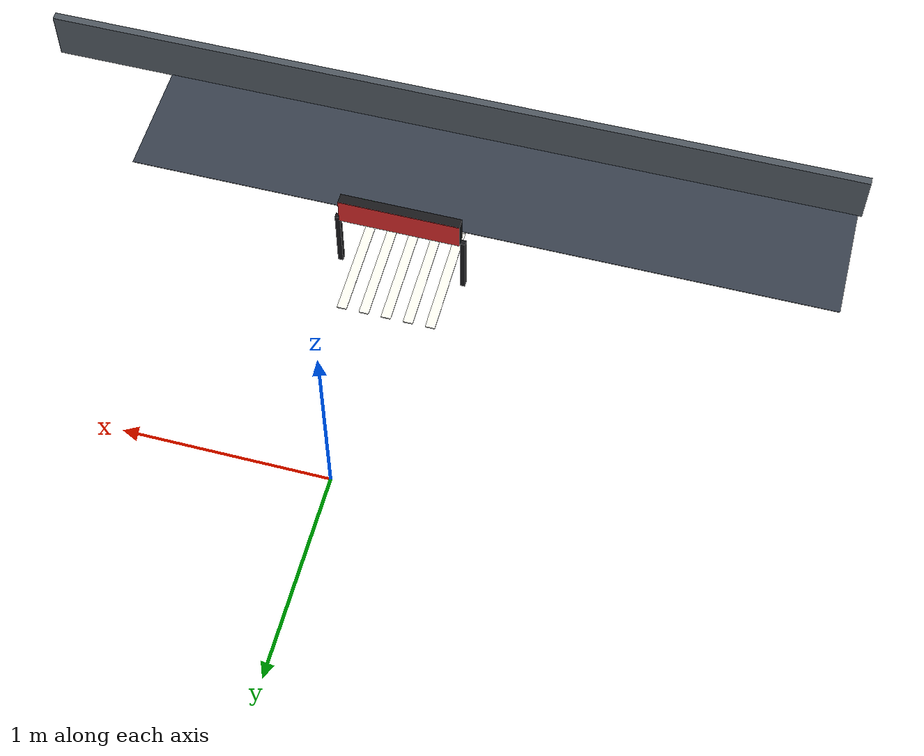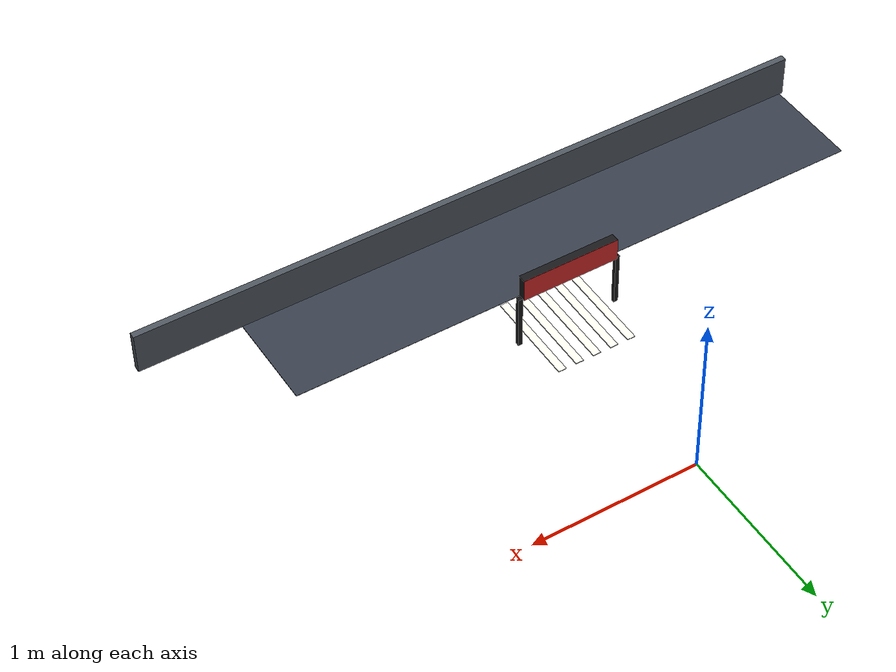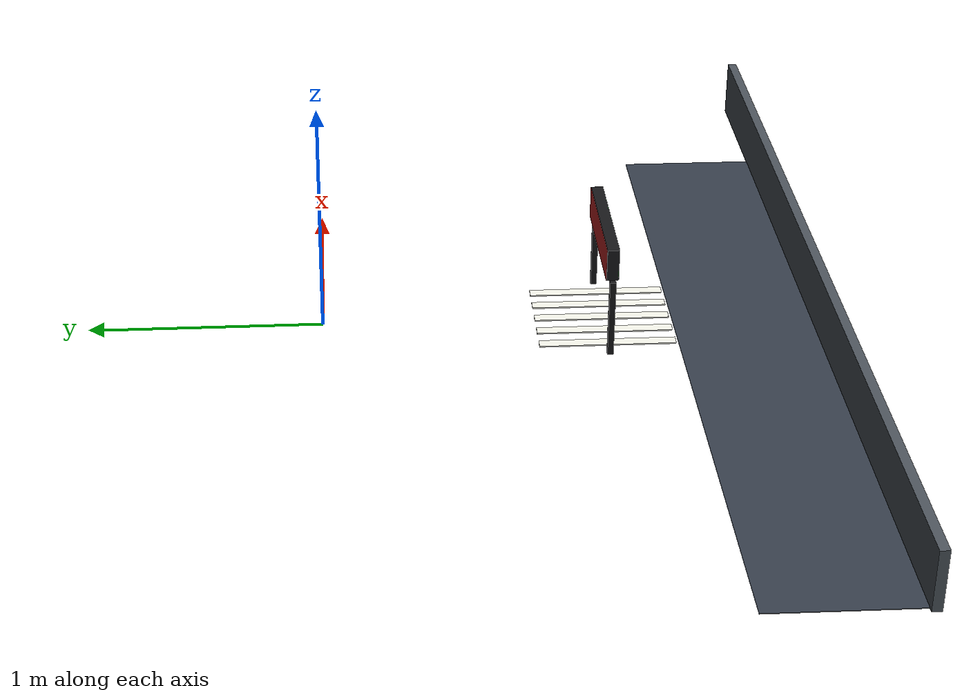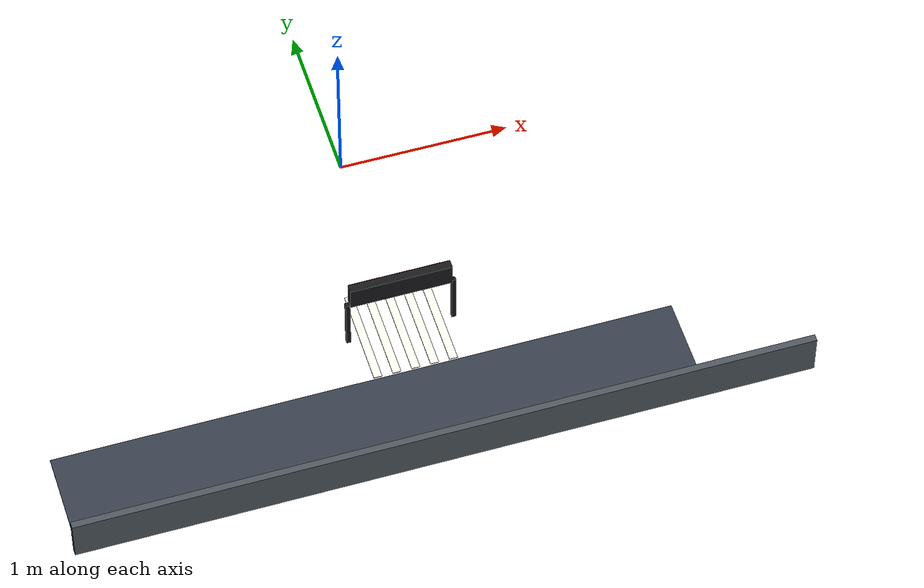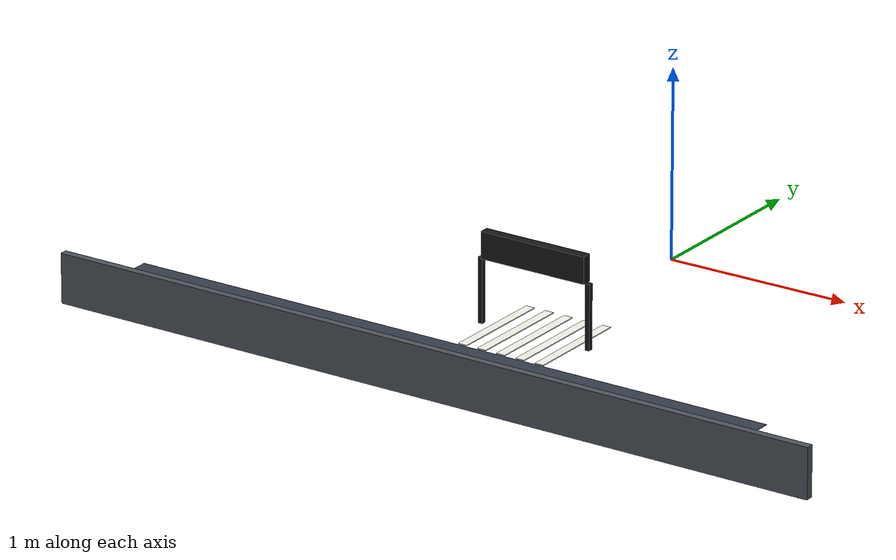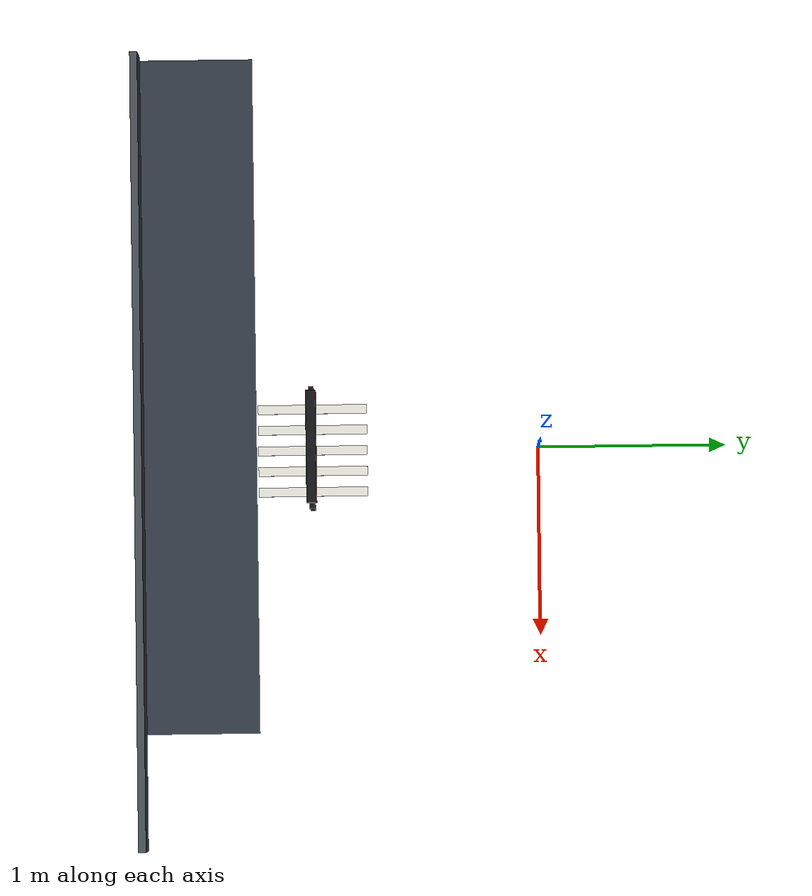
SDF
<sdf version="1.6">
 <world name="sq_community_4p2">
  <include><uri>model://sun</uri></include>
  <model name="sq4_road_bottom">
   <static>true</static>
   <pose>-0.3000 -1.8000 0.0000 0 0 0.00000</pose>
   <link name="surface">
    <visual name="surface_vis">
     <pose>0.0000 0.0000 0.0015 0 0 0.00000</pose>
     <geometry><box><size>3.6000 0.6000 0.0030</size></box></geometry>
     <material>
      <ambient>0.2100 0.2400 0.2900 1.0000</ambient>
      <diffuse>0.2100 0.2400 0.2900 1.0000</diffuse>
     </material>
    </visual>
   </link>
  </model>
  <model name="sq4_boundary_south">
   <static>true</static>
   <pose>0.0000 -2.1200 0.0000 0 0 0.00000</pose>
   <link name="wall">
    <visual name="wall_vis">
     <pose>0.0000 0.0000 0.1300 0 0 0.00000</pose>
     <geometry><box><size>4.2400 0.0400 0.2600</size></box></geometry>
     <material>
      <ambient>0.3000 0.3300 0.3600 1.0000</ambient>
      <diffuse>0.3000 0.3300 0.3600 1.0000</diffuse>
     </material>
    </visual>
    <collision name="wall_col">
     <pose>0.0000 0.0000 0.1300 0 0 0.00000</pose>
     <geometry><box><size>4.2400 0.0400 0.2600</size></box></geometry>
    </collision>
   </link>
  </model>
  <model name="sq4_crossing_lower_0">
   <static>true</static>
   <pose>-0.2200 -1.2000 0.0000 0 0 0.00000</pose>
   <link name="surface">
    <visual name="surface_vis">
     <pose>0.0000 0.0000 0.0025 0 0 0.00000</pose>
     <geometry><box><size>0.0480 0.5800 0.0050</size></box></geometry>
     <material>
      <ambient>0.9600 0.9600 0.9200 1.0000</ambient>
      <diffuse>0.9600 0.9600 0.9200 1.0000</diffuse>
     </material>
    </visual>
   </link>
  </model>
  <model name="sq4_crossing_lower_1">
   <static>true</static>
   <pose>-0.1100 -1.2000 0.0000 0 0 0.00000</pose>
   <link name="surface">
    <visual name="surface_vis">
     <pose>0.0000 0.0000 0.0025 0 0 0.00000</pose>
     <geometry><box><size>0.0480 0.5800 0.0050</size></box></geometry>
     <material>
      <ambient>0.9600 0.9600 0.9200 1.0000</ambient>
      <diffuse>0.9600 0.9600 0.9200 1.0000</diffuse>
     </material>
    </visual>
   </link>
  </model>
  <model name="sq4_crossing_lower_2">
   <static>true</static>
   <pose>0.0000 -1.2000 0.0000 0 0 0.00000</pose>
   <link name="surface">
    <visual name="surface_vis">
     <pose>0.0000 0.0000 0.0025 0 0 0.00000</pose>
     <geometry><box><size>0.0480 0.5800 0.0050</size></box></geometry>
     <material>
      <ambient>0.9600 0.9600 0.9200 1.0000</ambient>
      <diffuse>0.9600 0.9600 0.9200 1.0000</diffuse>
     </material>
    </visual>
   </link>
  </model>
  <model name="sq4_crossing_lower_3">
   <static>true</static>
   <pose>0.1100 -1.2000 0.0000 0 0 0.00000</pose>
   <link name="surface">
    <visual name="surface_vis">
     <pose>0.0000 0.0000 0.0025 0 0 0.00000</pose>
     <geometry><box><size>0.0480 0.5800 0.0050</size></box></geometry>
     <material>
      <ambient>0.9600 0.9600 0.9200 1.0000</ambient>
      <diffuse>0.9600 0.9600 0.9200 1.0000</diffuse>
     </material>
    </visual>
   </link>
  </model>
  <model name="sq4_crossing_lower_4">
   <static>true</static>
   <pose>0.2200 -1.2000 0.0000 0 0 0.00000</pose>
   <link name="surface">
    <visual name="surface_vis">
     <pose>0.0000 0.0000 0.0025 0 0 0.00000</pose>
     <geometry><box><size>0.0480 0.5800 0.0050</size></box></geometry>
     <material>
      <ambient>0.9600 0.9600 0.9200 1.0000</ambient>
      <diffuse>0.9600 0.9600 0.9200 1.0000</diffuse>
     </material>
    </visual>
   </link>
  </model>
  <include>
   <name>sq4_tl_lower</name>
   <pose>0.0000 -1.2000 0.0000 0 0 1.57080</pose>
   <uri>model://sq_traffic_light_4p2</uri>
  </include>
 </world>
</sdf>
